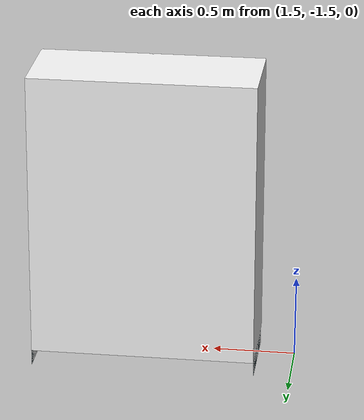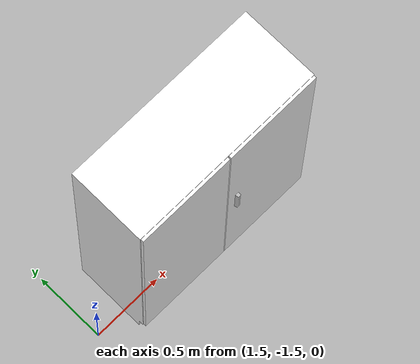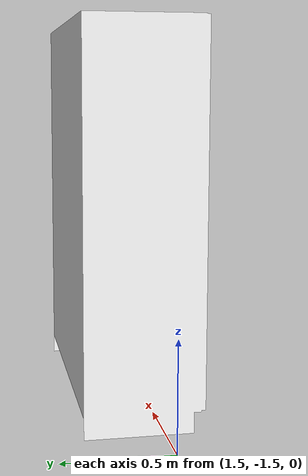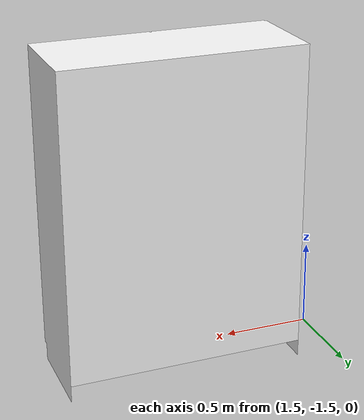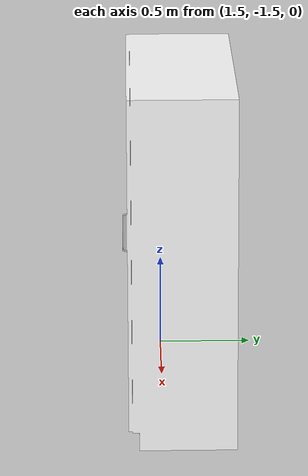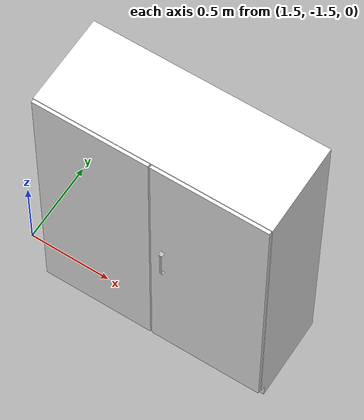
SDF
<?xml version='1.0'?>
<sdf version='1.5'>
  <model name='New_Cabinet'>
    <static>true</static>
    <link name="link">
      <pose>0 0 0 0 0 0</pose>
      <visual name="visual">
            <geometry>
                <mesh>
                    <uri>model://cabinet_test/meshes/cab.dae</uri>
                </mesh>
            </geometry>
          <material>
          <script>
               <uri>model://cabinet_test/materials/textures</uri>
               </script>
          </material>
        </visual>
        <collision name="collision">
            <geometry>
                <mesh>
                   <uri>model://cabinet_test/meshes/cab.dae</uri>
                </mesh>
            </geometry>
        </collision>
    </link>
  </model>
</sdf>
